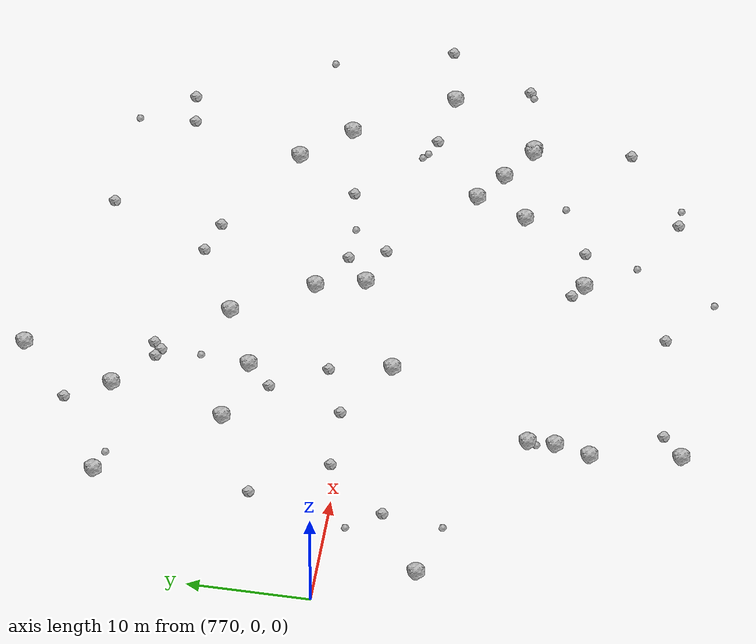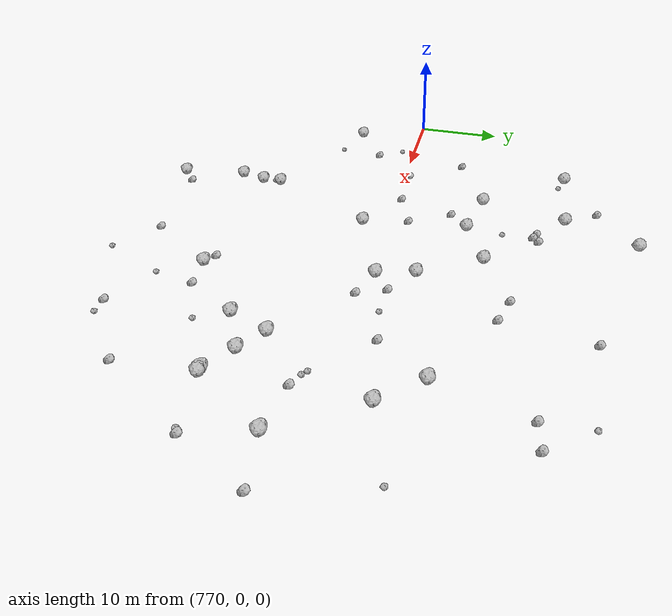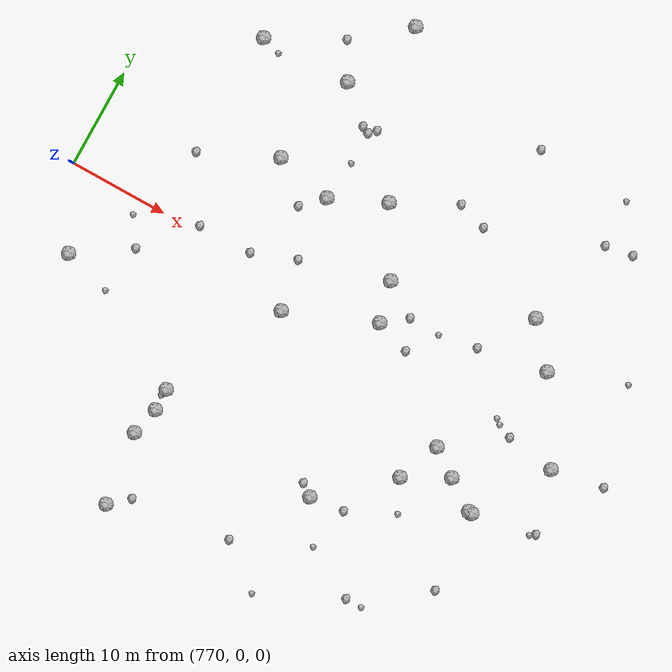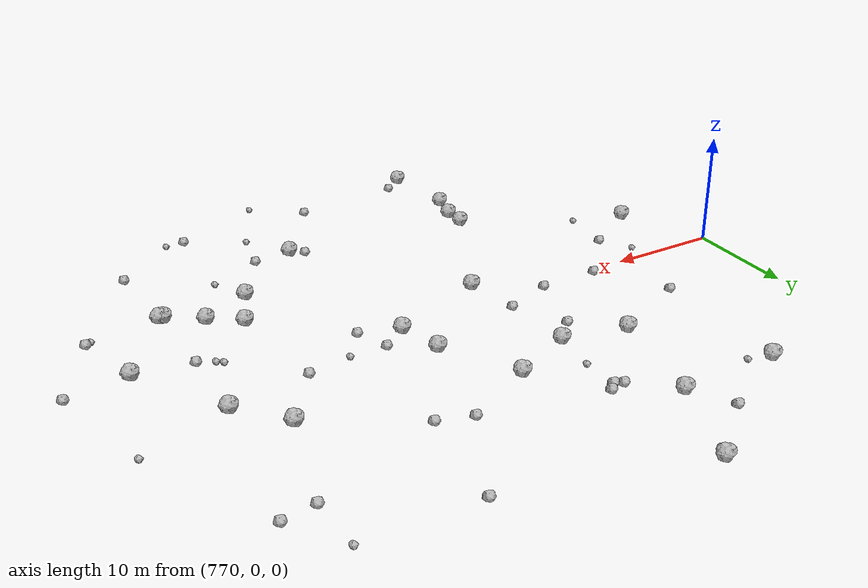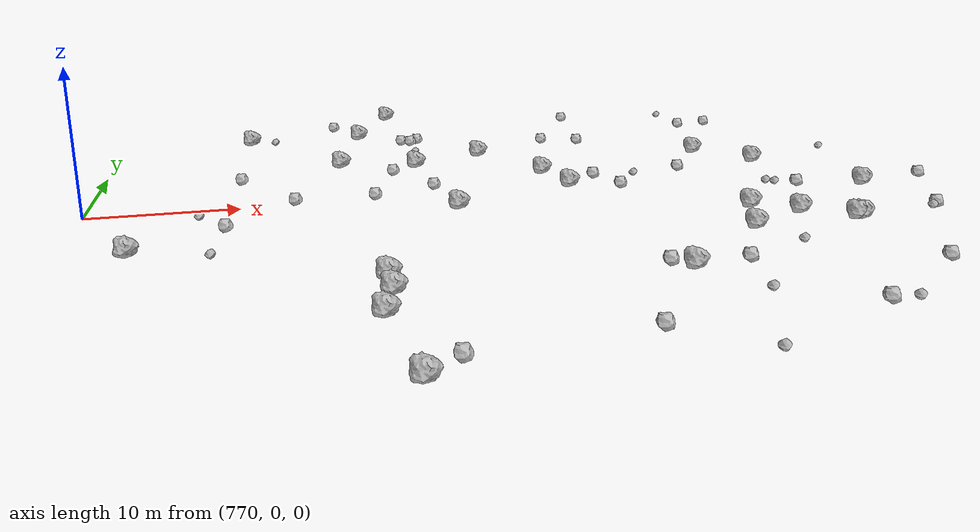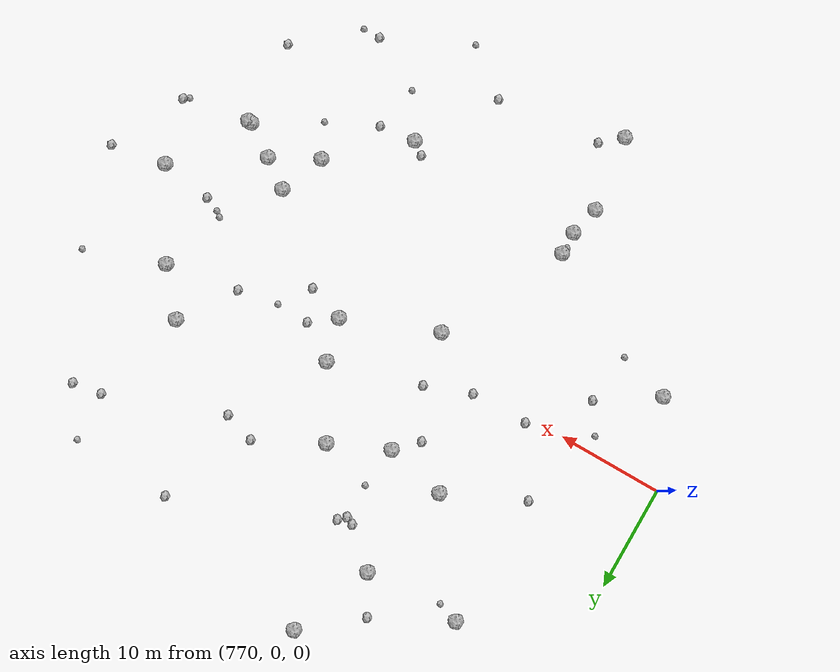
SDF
<sdf version="1.6">
 <world name="default">
  <include><uri>model://sun</uri></include>
  <model name="rock1_20_4">
   <include><uri>model://rock1</uri><pose>819.6034017277871 -10.894169116839553 0.5 0 0 0</pose></include>
  </model>
  <model name="rock1_20_5">
   <include><uri>model://rock1</uri><pose>788.4085813338354 -14.745116762952502 0.5 0 0 0</pose></include>
  </model>
  <model name="rock1_20_6">
   <include><uri>model://rock1</uri><pose>792.5080895348945 27.487208876033833 0.5 0 0 0</pose></include>
  </model>
  <model name="rock1_20_7">
   <include><uri>model://rock1</uri><pose>773.827717643419 -7.8272767581619185 0.5 0 0 0</pose></include>
  </model>
  <model name="rock1_20_8">
   <include><uri>model://rock1</uri><pose>813.915645216332 -6.942273142631542 0.5 0 0 0</pose></include>
  </model>
  <model name="rock1_20_9">
   <include><uri>model://rock1</uri><pose>819.6867230641767 4.523756323715915 0.5 0 0 0</pose></include>
  </model>
  <model name="rock1_20_10">
   <include><uri>model://rock1</uri><pose>816.2473475157173 8.507091897152328 0.5 0 0 0</pose></include>
  </model>
  <model name="rock1_20_11">
   <include><uri>model://rock1</uri><pose>802.2531781379497 4.897647722934117 0.5 0 0 0</pose></include>
  </model>
  <model name="rock1_20_12">
   <include><uri>model://rock1</uri><pose>788.4479611895274 -16.961218727504765 0.5 0 0 0</pose></include>
  </model>
  <model name="rock1_20_13">
   <include><uri>model://rock1</uri><pose>812.2098578462142 -11.225629123747972 0.5 0 0 0</pose></include>
  </model>
  <model name="rock1_20_14">
   <include><uri>model://rock1</uri><pose>787.7433845272102 -19.866025855878394 0.5 0 0 0</pose></include>
  </model>
  <model name="rock1_20_15">
   <include><uri>model://rock1</uri><pose>805.5362408959172 -17.09295507300483 0.5 0 0 0</pose></include>
  </model>
  <model name="rock1_20_16">
   <include><uri>model://rock1</uri><pose>787.2487109697197 10.158136028853846 0.5 0 0 0</pose></include>
  </model>
  <model name="rock1_20_17">
   <include><uri>model://rock1</uri><pose>803.292253714384 0.8409843244409352 0.5 0 0 0</pose></include>
  </model>
  <model name="rock1_20_18">
   <include><uri>model://rock1</uri><pose>788.6951296919879 -27.21232302910932 0.5 0 0 0</pose></include>
  </model>
  <model name="rock1_20_19">
   <include><uri>model://rock1</uri><pose>819.9623208773531 -10.937582591693662 0.5 0 0 0</pose></include>
  </model>
  <model name="rock1_20_20">
   <include><uri>model://rock1</uri><pose>793.0021877310469 8.913602040785847 0.5 0 0 0</pose></include>
  </model>
  <model name="rock1_20_21">
   <include><uri>model://rock1</uri><pose>780.198807952372 19.456229511105242 0.5 0 0 0</pose></include>
  </model>
  <model name="rock1_20_22">
   <include><uri>model://rock1</uri><pose>794.4298723804492 -2.73915652101325 0.5 0 0 0</pose></include>
  </model>
  <model name="rock1_20_23">
   <include><uri>model://rock1</uri><pose>789.3421151111779 19.65627279528946 0.5 0 0 0</pose></include>
  </model>
  <model name="rock1_20_24">
   <include><uri>model://rock1</uri><pose>798.4789689279365 11.404554153263163 0.5 0 0 0</pose></include>
  </model>
  <model name="rock1_20_25">
   <include><uri>model://rock1</uri><pose>816.6100152173259 -8.85300455999532 0.5 0 0 0</pose></include>
  </model>
  <model name="rock1_20_26">
   <include><uri>model://rock1</uri><pose>824.5877969907425 -3.5311962168543474 0.5 0 0 0</pose></include>
  </model>
  <model name="rock2_20_0">
   <include><uri>model://rock2</uri><pose>790.6033559988015 -25.541444946509028 0.3 0 0 0</pose></include>
  </model>
  <model name="rock2_20_1">
   <include><uri>model://rock2</uri><pose>789.058402014371 0.7219442453483573 0.3 0 0 0</pose></include>
  </model>
  <model name="rock2_20_2">
   <include><uri>model://rock2</uri><pose>783.5794610969001 0.6383654135440082 0.3 0 0 0</pose></include>
  </model>
  <model name="rock2_20_3">
   <include><uri>model://rock2</uri><pose>804.3151187753789 -16.202672944280707 0.3 0 0 0</pose></include>
  </model>
  <model name="rock2_20_4">
   <include><uri>model://rock2</uri><pose>793.4305299406294 16.28911351925303 0.3 0 0 0</pose></include>
  </model>
  <model name="rock2_20_5">
   <include><uri>model://rock2</uri><pose>808.810745161908 22.990101602287424 0.3 0 0 0</pose></include>
  </model>
  <model name="rock2_20_6">
   <include><uri>model://rock2</uri><pose>793.4347161934297 2.375447170721941 0.3 0 0 0</pose></include>
  </model>
  <model name="rock2_20_7">
   <include><uri>model://rock2</uri><pose>829.8759280644887 -2.5922522640665555 0.3 0 0 0</pose></include>
  </model>
  <model name="rock2_20_8">
   <include><uri>model://rock2</uri><pose>819.5916888961028 -2.747881783449916 0.3 0 0 0</pose></include>
  </model>
  <model name="rock2_20_9">
   <include><uri>model://rock2</uri><pose>809.0230266715239 -16.713210093293313 0.3 0 0 0</pose></include>
  </model>
  <model name="rock2_20_10">
   <include><uri>model://rock2</uri><pose>794.0919213364084 16.93698052889725 0.3 0 0 0</pose></include>
  </model>
  <model name="rock2_20_11">
   <include><uri>model://rock2</uri><pose>792.6991331654461 16.636603076508138 0.3 0 0 0</pose></include>
  </model>
  <model name="rock2_20_12">
   <include><uri>model://rock2</uri><pose>826.3375538023387 -9.709053340230263 0.3 0 0 0</pose></include>
  </model>
  <model name="rock2_20_13">
   <include><uri>model://rock2</uri><pose>800.6977264083624 -24.46256646269539 0.3 0 0 0</pose></include>
  </model>
  <model name="rock2_20_14">
   <include><uri>model://rock2</uri><pose>820.4523942752501 -19.122216109276426 0.3 0 0 0</pose></include>
  </model>
  <model name="rock2_20_15">
   <include><uri>model://rock2</uri><pose>779.8044350303912 6.7069173326541645 0.3 0 0 0</pose></include>
  </model>
  <model name="rock2_20_16">
   <include><uri>model://rock2</uri><pose>807.5901906471794 13.721477395179491 0.3 0 0 0</pose></include>
  </model>
  <model name="rock2_20_17">
   <include><uri>model://rock2</uri><pose>787.3020136856363 23.22364834044837 0.3 0 0 0</pose></include>
  </model>
  <model name="rock2_20_18">
   <include><uri>model://rock2</uri><pose>779.2247118591632 -4.255850127558173 0.3 0 0 0</pose></include>
  </model>
  <model name="rock2_20_19">
   <include><uri>model://rock2</uri><pose>805.6231110923303 2.669480951552238 0.3 0 0 0</pose></include>
  </model>
  <model name="rock2_20_20">
   <include><uri>model://rock2</uri><pose>812.6843311573414 3.2873267638248365 0.3 0 0 0</pose></include>
  </model>
  <model name="rock2_20_21">
   <include><uri>model://rock2</uri><pose>813.323875896653 -23.99205502143313 0.3 0 0 0</pose></include>
  </model>
  <model name="rock2_20_22">
   <include><uri>model://rock2</uri><pose>818.7068341735637 17.8792635534709 0.3 0 0 0</pose></include>
  </model>
  <model name="rock2_20_23">
   <include><uri>model://rock2</uri><pose>790.9630833070127 6.905446509170531 0.3 0 0 0</pose></include>
  </model>
  <model name="rock2_20_24">
   <include><uri>model://rock2</uri><pose>806.7800395032473 -0.327805504896002 0.3 0 0 0</pose></include>
  </model>
  <model name="rock2_20_25">
   <include><uri>model://rock2</uri><pose>821.4914892432809 18.334201935240735 0.3 0 0 0</pose></include>
  </model>
  <model name="rock2_20_26">
   <include><uri>model://rock2</uri><pose>804.6397467966966 14.644604655394907 0.3 0 0 0</pose></include>
  </model>
  <model name="rock3_20_0">
   <include><uri>model://rock3</uri><pose>817.6409162610747 -1.7676978162356747 0.2 0 0 0</pose></include>
  </model>
  <model name="rock3_20_1">
   <include><uri>model://rock3</uri><pose>777.4067626582332 -1.5649376879880776 0.2 0 0 0</pose></include>
  </model>
  <model name="rock3_20_2">
   <include><uri>model://rock3</uri><pose>818.1491390019509 -2.174803969080344 0.2 0 0 0</pose></include>
  </model>
  <model name="rock3_20_3">
   <include><uri>model://rock3</uri><pose>788.2025946946229 -15.497798629640371 0.2 0 0 0</pose></include>
  </model>
  <model name="rock3_20_4">
   <include><uri>model://rock3</uri><pose>793.4207480704639 12.934761017052772 0.2 0 0 0</pose></include>
  </model>
  <model name="rock3_20_5">
   <include><uri>model://rock3</uri><pose>808.1202159224433 -21.193825345396213 0.2 0 0 0</pose></include>
  </model>
  <model name="rock3_20_6">
   <include><uri>model://rock3</uri><pose>808.8029981535607 2.5263574592266522 0.2 0 0 0</pose></include>
  </model>
  <model name="rock3_20_7">
   <include><uri>model://rock3</uri><pose>818.4168246723343 22.578521640668527 0.2 0 0 0</pose></include>
  </model>
  <model name="rock3_20_8">
   <include><uri>model://rock3</uri><pose>814.9893781688834 -24.054131660750304 0.2 0 0 0</pose></include>
  </model>
  <model name="rock3_20_9">
   <include><uri>model://rock3</uri><pose>827.1511256549458 7.190109900479484 0.2 0 0 0</pose></include>
  </model>
  <model name="rock3_20_10">
   <include><uri>model://rock3</uri><pose>778.6109097587713 -9.27032268992508 0.2 0 0 0</pose></include>
  </model>
  <model name="rock3_20_11">
   <include><uri>model://rock3</uri><pose>805.120853684592 -27.992830773930436 0.2 0 0 0</pose></include>
  </model>
  <model name="rock3_20_12">
   <include><uri>model://rock3</uri><pose>782.1301542545052 18.804235874233747 0.2 0 0 0</pose></include>
  </model>
  <model name="rock3_20_13">
   <include><uri>model://rock3</uri><pose>813.719029521391 -14.478387162192902 0.2 0 0 0</pose></include>
  </model>
  <model name="rock3_20_14">
   <include><uri>model://rock3</uri><pose>825.8023117369889 -10.114967399254262 0.2 0 0 0</pose></include>
  </model>
 </world>
</sdf>
